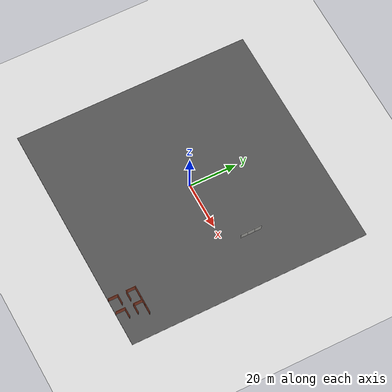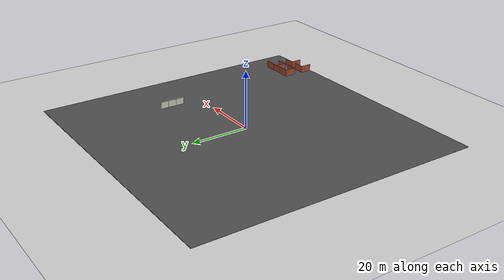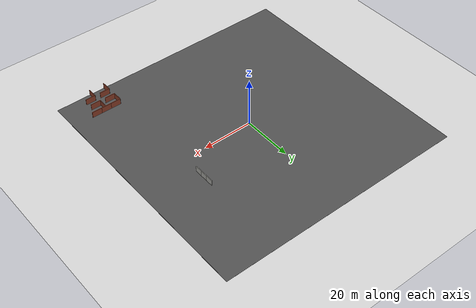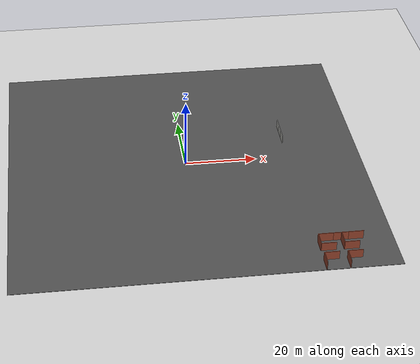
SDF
<sdf version="1.6">
 <world name="default">
  <model name="ground_plane">
   <static>1</static>
   <link name="link">
    <collision name="collision">
     <geometry><plane><normal>0 0 1</normal><size>100 100</size></plane></geometry>
     <surface><friction><ode><mu>100</mu><mu2>50</mu2></ode></friction></surface>
    </collision>
    <visual name="visual">
     <cast_shadows>0</cast_shadows>
     <geometry><plane><normal>0 0 1</normal><size>100 100</size></plane></geometry>
     <material>
      <script><uri>file://media/materials/scripts/gazebo.material</uri><name>Gazebo/Grey</name></script>
     </material>
    </visual>
   </link>
  </model>
  <model name="asphalt_plane">
   <static>1</static>
   <link name="link">
    <collision name="collision"><geometry><box><size>100 100 0.1</size></box></geometry></collision>
    <visual name="visual">
     <cast_shadows>0</cast_shadows>
     <geometry><box><size>100 100 0.1</size></box></geometry>
     <material>
      <script>
       <uri>model://asphalt_plane/materials/scripts</uri>
       <uri>model://asphalt_plane/materials/textures</uri>
       <name>vrc/asphalt</name>
      </script>
     </material>
    </visual>
   </link>
  </model>
  <model name="concrete_wall_15">
   <pose>29.0909 8.30314 0 0 -0 0</pose>
   <link name="Wall_0">
    <collision name="Wall_0_Collision">
     <geometry><box><size>3 0.15 2.5</size></box></geometry>
     <pose>0 0 1.25 0 -0 0</pose>
    </collision>
    <visual name="Wall_0_Visual">
     <pose>0 0 1.25 0 -0 0</pose>
     <geometry><box><size>3 0.15 2.5</size></box></geometry>
     <material>
      <script><uri>file://media/materials/scripts/gazebo.material</uri><name>Gazebo/CeilingTiled</name></script>
      <ambient>1 1 1 1</ambient>
     </material>
     <meta><layer>0</layer></meta>
    </visual>
    <pose>0 0 0 0 -0 1.5708</pose>
   </link>
   <static>1</static>
  </model>
  <model name="concrete_wall_19">
   <pose>29.1035 11.247 0 0 -0 0</pose>
   <link name="Wall_0">
    <collision name="Wall_0_Collision">
     <geometry><box><size>3 0.15 2.5</size></box></geometry>
     <pose>0 0 1.25 0 -0 0</pose>
    </collision>
    <visual name="Wall_0_Visual">
     <pose>0 0 1.25 0 -0 0</pose>
     <geometry><box><size>3 0.15 2.5</size></box></geometry>
     <material>
      <script><uri>file://media/materials/scripts/gazebo.material</uri><name>Gazebo/CeilingTiled</name></script>
      <ambient>1 1 1 1</ambient>
     </material>
     <meta><layer>0</layer></meta>
    </visual>
    <pose>0 0 0 0 -0 1.5708</pose>
   </link>
   <static>1</static>
  </model>
  <model name="concrete_wall_20">
   <pose>29.1055 14.1527 0 0 -0 0</pose>
   <link name="Wall_0">
    <collision name="Wall_0_Collision">
     <geometry><box><size>3 0.15 2.5</size></box></geometry>
     <pose>0 0 1.25 0 -0 0</pose>
    </collision>
    <visual name="Wall_0_Visual">
     <pose>0 0 1.25 0 -0 0</pose>
     <geometry><box><size>3 0.15 2.5</size></box></geometry>
     <material>
      <script><uri>file://media/materials/scripts/gazebo.material</uri><name>Gazebo/CeilingTiled</name></script>
      <ambient>1 1 1 1</ambient>
     </material>
     <meta><layer>0</layer></meta>
    </visual>
    <pose>0 0 0 0 -0 1.5708</pose>
   </link>
   <static>1</static>
  </model>
  <model name="brick_wall_clone">
   <pose>39.9451 -38.5658 0 0 -0 0</pose>
   <link name="Wall_0">
    <collision name="Wall_0_Collision">
     <geometry><box><size>4 0.15 2.5</size></box></geometry>
     <pose>0 0 1.25 0 -0 0</pose>
    </collision>
    <visual name="Wall_0_Visual">
     <pose>0 0 1.25 0 -0 0</pose>
     <geometry><box><size>4 0.15 2.5</size></box></geometry>
     <material>
      <script><uri>file://media/materials/scripts/gazebo.material</uri><name>Gazebo/Bricks</name></script>
      <ambient>1 1 1 1</ambient>
     </material>
     <meta><layer>0</layer></meta>
    </visual>
   </link>
   <static>1</static>
  </model>
  <model name="brick_wall_clone_0">
   <pose>35.9451 -38.5658 0 0 -0 0</pose>
   <link name="Wall_0">
    <collision name="Wall_0_Collision">
     <geometry><box><size>4 0.15 2.5</size></box></geometry>
     <pose>0 0 1.25 0 -0 0</pose>
    </collision>
    <visual name="Wall_0_Visual">
     <pose>0 0 1.25 0 -0 0</pose>
     <geometry><box><size>4 0.15 2.5</size></box></geometry>
     <material>
      <script><uri>file://media/materials/scripts/gazebo.material</uri><name>Gazebo/Bricks</name></script>
      <ambient>1 1 1 1</ambient>
     </material>
     <meta><layer>0</layer></meta>
    </visual>
   </link>
   <static>1</static>
  </model>
  <model name="brick_wall_clone_1">
   <pose>31.9451 -38.5658 0 0 -0 0</pose>
   <link name="Wall_0">
    <collision name="Wall_0_Collision">
     <geometry><box><size>4 0.15 2.5</size></box></geometry>
     <pose>0 0 1.25 0 -0 0</pose>
    </collision>
    <visual name="Wall_0_Visual">
     <pose>0 0 1.25 0 -0 0</pose>
     <geometry><box><size>4 0.15 2.5</size></box></geometry>
     <material>
      <script><uri>file://media/materials/scripts/gazebo.material</uri><name>Gazebo/Bricks</name></script>
      <ambient>1 1 1 1</ambient>
     </material>
     <meta><layer>0</layer></meta>
    </visual>
   </link>
   <static>1</static>
  </model>
  <model name="brick_wall_1">
   <pose>29.9233 -40.4954 0 0 -0 1.57079</pose>
   <link name="Wall_0">
    <collision name="Wall_0_Collision">
     <geometry><box><size>4 0.15 2.5</size></box></geometry>
     <pose>0 0 1.25 0 -0 0</pose>
    </collision>
    <visual name="Wall_0_Visual">
     <pose>0 0 1.25 0 -0 0</pose>
     <geometry><box><size>4 0.15 2.5</size></box></geometry>
     <material>
      <script><uri>file://media/materials/scripts/gazebo.material</uri><name>Gazebo/Bricks</name></script>
      <ambient>1 1 1 1</ambient>
     </material>
     <meta><layer>0</layer></meta>
    </visual>
   </link>
   <static>1</static>
  </model>
  <model name="brick_wall_1_clone">
   <pose>29.9233 -47.9139 0 0 -0 1.57079</pose>
   <link name="Wall_0">
    <collision name="Wall_0_Collision">
     <geometry><box><size>4 0.15 2.5</size></box></geometry>
     <pose>0 0 1.25 0 -0 0</pose>
    </collision>
    <visual name="Wall_0_Visual">
     <pose>0 0 1.25 0 -0 0</pose>
     <geometry><box><size>4 0.15 2.5</size></box></geometry>
     <material>
      <script><uri>file://media/materials/scripts/gazebo.material</uri><name>Gazebo/Bricks</name></script>
      <ambient>1 1 1 1</ambient>
     </material>
     <meta><layer>0</layer></meta>
    </visual>
   </link>
   <static>1</static>
  </model>
  <model name="brick_wall_clone_3">
   <pose>31.9806 -42.4199 0 0 -0 0</pose>
   <link name="Wall_0">
    <collision name="Wall_0_Collision">
     <geometry><box><size>4 0.15 2.5</size></box></geometry>
     <pose>0 0 1.25 0 -0 0</pose>
    </collision>
    <visual name="Wall_0_Visual">
     <pose>0 0 1.25 0 -0 0</pose>
     <geometry><box><size>4 0.15 2.5</size></box></geometry>
     <material>
      <script><uri>file://media/materials/scripts/gazebo.material</uri><name>Gazebo/Bricks</name></script>
      <ambient>1 1 1 1</ambient>
     </material>
     <meta><layer>0</layer></meta>
    </visual>
   </link>
   <static>1</static>
  </model>
  <model name="brick_wall_clone_4">
   <pose>31.933 -45.9888 0 0 -0 0</pose>
   <link name="Wall_0">
    <collision name="Wall_0_Collision">
     <geometry><box><size>4 0.15 2.5</size></box></geometry>
     <pose>0 0 1.25 0 -0 0</pose>
    </collision>
    <visual name="Wall_0_Visual">
     <pose>0 0 1.25 0 -0 0</pose>
     <geometry><box><size>4 0.15 2.5</size></box></geometry>
     <material>
      <script><uri>file://media/materials/scripts/gazebo.material</uri><name>Gazebo/Bricks</name></script>
      <ambient>1 1 1 1</ambient>
     </material>
     <meta><layer>0</layer></meta>
    </visual>
   </link>
   <static>1</static>
  </model>
  <model name="brick_wall_1_clone_0">
   <pose>36.0534 -40.4954 0 0 -0 1.57079</pose>
   <link name="Wall_0">
    <collision name="Wall_0_Collision">
     <geometry><box><size>4 0.15 2.5</size></box></geometry>
     <pose>0 0 1.25 0 -0 0</pose>
    </collision>
    <visual name="Wall_0_Visual">
     <pose>0 0 1.25 0 -0 0</pose>
     <geometry><box><size>4 0.15 2.5</size></box></geometry>
     <material>
      <script><uri>file://media/materials/scripts/gazebo.material</uri><name>Gazebo/Bricks</name></script>
      <ambient>1 1 1 1</ambient>
     </material>
     <meta><layer>0</layer></meta>
    </visual>
   </link>
   <static>1</static>
  </model>
  <model name="brick_wall_1_clone_1">
   <pose>36.0534 -47.9139 0 0 -0 1.57079</pose>
   <link name="Wall_0">
    <collision name="Wall_0_Collision">
     <geometry><box><size>4 0.15 2.5</size></box></geometry>
     <pose>0 0 1.25 0 -0 0</pose>
    </collision>
    <visual name="Wall_0_Visual">
     <pose>0 0 1.25 0 -0 0</pose>
     <geometry><box><size>4 0.15 2.5</size></box></geometry>
     <material>
      <script><uri>file://media/materials/scripts/gazebo.material</uri><name>Gazebo/Bricks</name></script>
      <ambient>1 1 1 1</ambient>
     </material>
     <meta><layer>0</layer></meta>
    </visual>
   </link>
   <static>1</static>
  </model>
  <model name="brick_wall_clone_5">
   <pose>38.0534 -42.4199 0 0 -0 0</pose>
   <link name="Wall_0">
    <collision name="Wall_0_Collision">
     <geometry><box><size>4 0.15 2.5</size></box></geometry>
     <pose>0 0 1.25 0 -0 0</pose>
    </collision>
    <visual name="Wall_0_Visual">
     <pose>0 0 1.25 0 -0 0</pose>
     <geometry><box><size>4 0.15 2.5</size></box></geometry>
     <material>
      <script><uri>file://media/materials/scripts/gazebo.material</uri><name>Gazebo/Bricks</name></script>
      <ambient>1 1 1 1</ambient>
     </material>
     <meta><layer>0</layer></meta>
    </visual>
   </link>
   <static>1</static>
  </model>
  <model name="brick_wall_clone_6">
   <pose>38.0534 -45.9888 0 0 -0 0</pose>
   <link name="Wall_0">
    <collision name="Wall_0_Collision">
     <geometry><box><size>4 0.15 2.5</size></box></geometry>
     <pose>0 0 1.25 0 -0 0</pose>
    </collision>
    <visual name="Wall_0_Visual">
     <pose>0 0 1.25 0 -0 0</pose>
     <geometry><box><size>4 0.15 2.5</size></box></geometry>
     <material>
      <script><uri>file://media/materials/scripts/gazebo.material</uri><name>Gazebo/Bricks</name></script>
      <ambient>1 1 1 1</ambient>
     </material>
     <meta><layer>0</layer></meta>
    </visual>
   </link>
   <static>1</static>
  </model>
 </world>
</sdf>
